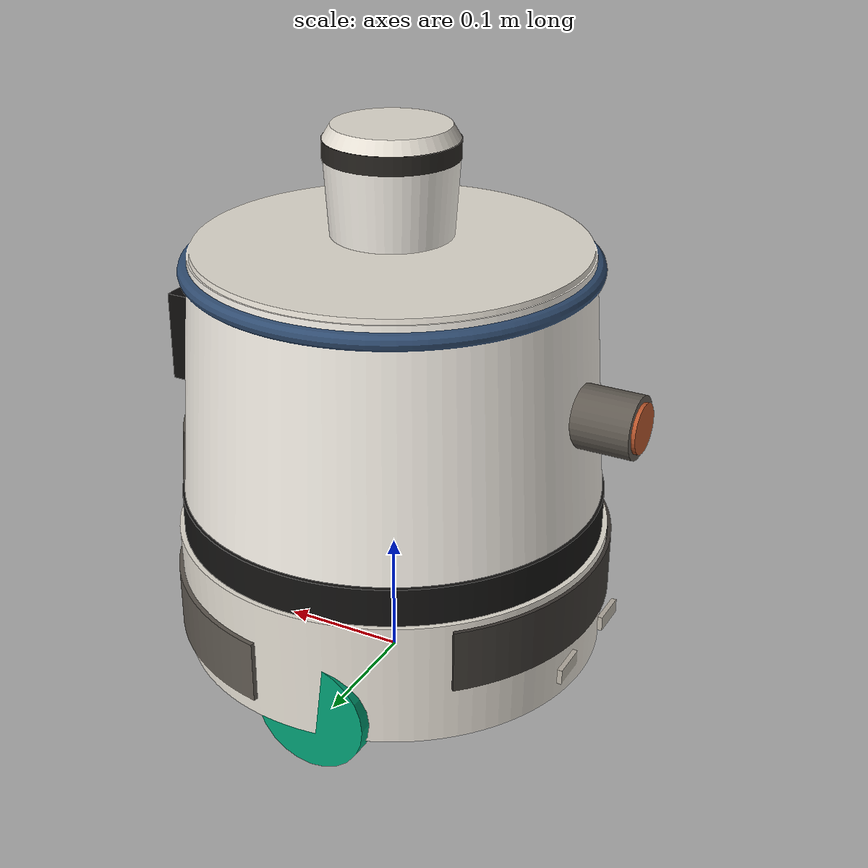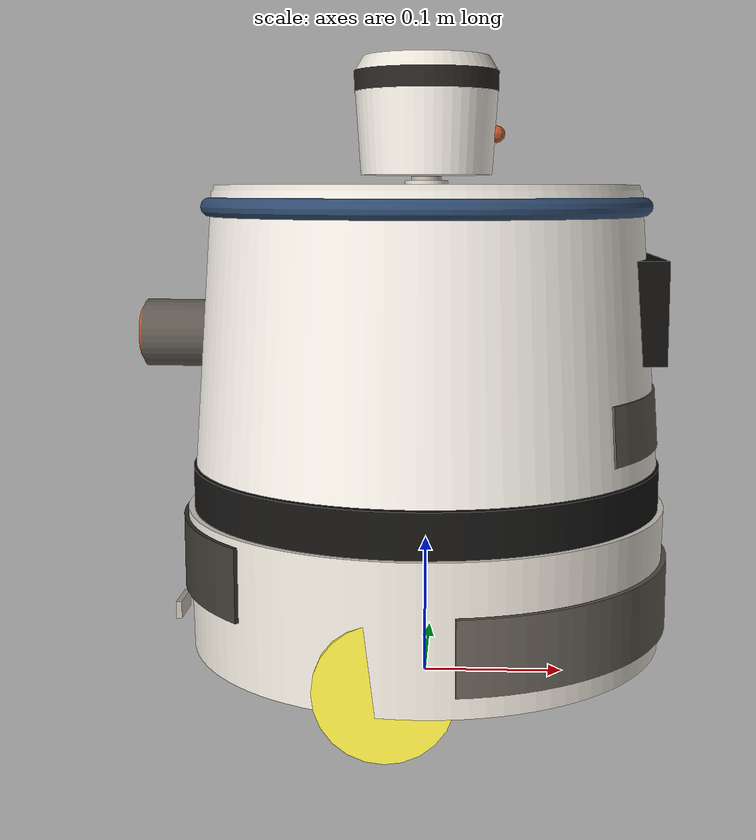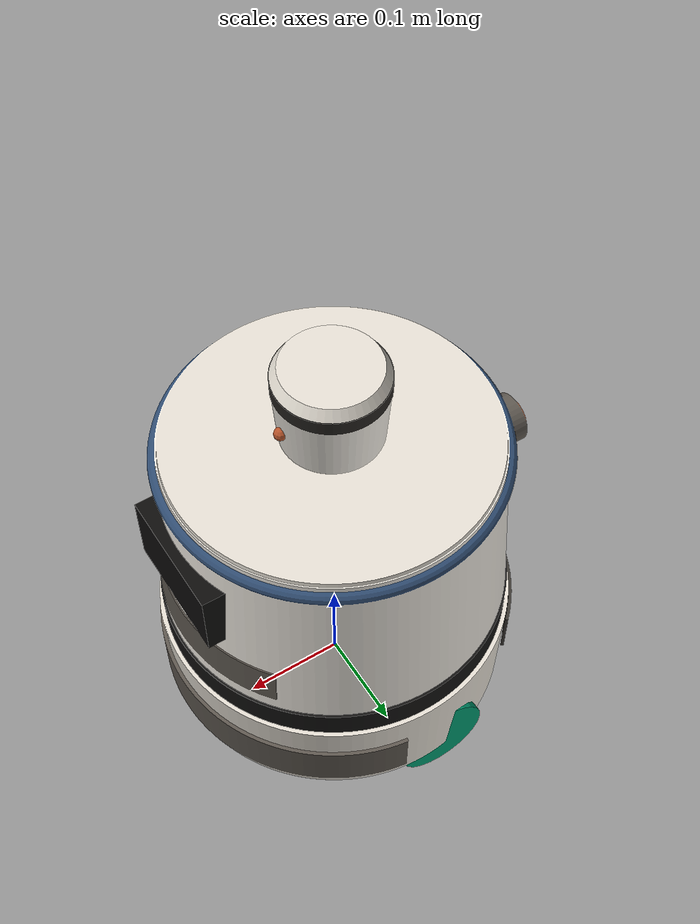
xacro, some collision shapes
<?xml version="1.0"?>
<robot name="oddech" xmlns:xacro="http://www.ros.org/wiki/xacro">
  <xacro:arg name="gazebo" default="true"/>
  <link name="base_footprint"/>
  <link name="base_link">
    <visual name="base_link_visual"><origin xyz="0 0 0" rpy="0 0 0"/><geometry><mesh filename="package://oddech_description/meshes/visual/base.dae"/></geometry></visual>
    <collision name="base_link_collision_0"><origin xyz="0 0 0.191" rpy="0 0 0"/><geometry><cylinder radius="0.173" length="0.322"/></geometry></collision>
    <inertial><origin xyz="-0.015 0 0.12" rpy="0 0 0"/><mass value="4.2"/><inertia ixx="0.06846" ixy="0" ixz="0" iyy="0.06846" iyz="0" izz="0.06069"/></inertial>
  </link>
  <link name="wheel_left_link">
    <visual name="wheel_left_link_visual"><origin xyz="0 0 0" rpy="0 0 0"/><geometry><mesh filename="package://oddech_description/meshes/visual/wheel.dae"/></geometry></visual>
    <collision name="wheel_left_link_collision_0"><origin xyz="0 0 0" rpy="1.5708 0 0"/><geometry><cylinder radius="0.045" length="0.028"/></geometry></collision>
    <inertial><origin xyz="0 0 0" rpy="0 0 0"/><mass value="0.28"/><inertia ixx="0.000160043" ixy="0" ixz="0" iyy="0.0002835" iyz="0" izz="0.000160043"/></inertial>
  </link>
  <link name="wheel_right_link">
    <visual name="wheel_right_link_visual"><origin xyz="0 0 0" rpy="0 0 0"/><geometry><mesh filename="package://oddech_description/meshes/visual/wheel.dae"/></geometry></visual>
    <collision name="wheel_right_link_collision_0"><origin xyz="0 0 0" rpy="1.5708 0 0"/><geometry><cylinder radius="0.045" length="0.028"/></geometry></collision>
    <inertial><origin xyz="0 0 0" rpy="0 0 0"/><mass value="0.28"/><inertia ixx="0.000160043" ixy="0" ixz="0" iyy="0.0002835" iyz="0" izz="0.000160043"/></inertial>
  </link>
  <link name="caster_front_link">
    <visual name="caster_front_link_visual"><origin xyz="0 0 0" rpy="0 0 0"/><geometry><mesh filename="package://oddech_description/meshes/visual/caster.dae"/></geometry></visual>
    <collision name="caster_front_link_collision_0"><origin xyz="0 0 0" rpy="0 0 0"/><geometry><sphere radius="0.018"/></geometry></collision>
    <inertial><origin xyz="0 0 0" rpy="0 0 0"/><mass value="0.02"/><inertia ixx="2.592e-06" ixy="0" ixz="0" iyy="2.592e-06" iyz="0" izz="2.592e-06"/></inertial>
  </link>
  <link name="caster_rear_link">
    <visual name="caster_rear_link_visual"><origin xyz="0 0 0" rpy="0 0 0"/><geometry><mesh filename="package://oddech_description/meshes/visual/caster.dae"/></geometry></visual>
    <collision name="caster_rear_link_collision_0"><origin xyz="0 0 0" rpy="0 0 0"/><geometry><sphere radius="0.018"/></geometry></collision>
    <inertial><origin xyz="0 0 0" rpy="0 0 0"/><mass value="0.02"/><inertia ixx="2.592e-06" ixy="0" ixz="0" iyy="2.592e-06" iyz="0" izz="2.592e-06"/></inertial>
  </link>
  <link name="head_link">
    <visual name="head_link_visual"><origin xyz="0 0 0" rpy="0 0 0"/><geometry><mesh filename="package://oddech_description/meshes/visual/head.dae"/></geometry></visual>
    <collision name="head_link_collision_0"><origin xyz="0 0 0.0025" rpy="0 0 0"/><geometry><cylinder radius="0.05" length="0.081"/></geometry></collision>
    <inertial><origin xyz="0 0 0.0025" rpy="0 0 0"/><mass value="0.3"/><inertia ixx="0.000351525" ixy="0" ixz="0" iyy="0.000351525" iyz="0" izz="0.000375"/></inertial>
  </link>
  <link name="lidar_link"/>
  <link name="imu_link"/>
  <link name="cartridge_link"/>
  <link name="mast_stage_1">
    <visual name="mast_stage_1_visual"><origin xyz="0 0 0" rpy="0 0 0"/><geometry><mesh filename="package://oddech_description/meshes/visual/mast_stage_1.dae"/></geometry></visual>
    <collision name="mast_stage_1_collision_0"><origin xyz="0 0 0.16" rpy="0 0 0"/><geometry><cylinder radius="0.024" length="0.32"/></geometry></collision>
    <inertial><origin xyz="0 0 0.16" rpy="0 0 0"/><mass value="0.130288"/><inertia ixx="0.00114932" ixy="0" ixz="0" iyy="0.00114932" iyz="0" izz="7.5046e-05"/></inertial>
  </link>
  <link name="mast_stage_2">
    <visual name="mast_stage_2_visual"><origin xyz="0 0 0" rpy="0 0 0"/><geometry><mesh filename="package://oddech_description/meshes/visual/mast_stage_2.dae"/></geometry></visual>
    <collision name="mast_stage_2_collision_0"><origin xyz="0 0 0.16" rpy="0 0 0"/><geometry><cylinder radius="0.0195" length="0.32"/></geometry></collision>
    <inertial><origin xyz="0 0 0.16" rpy="0 0 0"/><mass value="0.105859"/><inertia ixx="0.000923458" ixy="0" ixz="0" iyy="0.000923458" iyz="0" izz="4.02529e-05"/></inertial>
  </link>
  <link name="mast_stage_3">
    <visual name="mast_stage_3_visual"><origin xyz="0 0 0" rpy="0 0 0"/><geometry><mesh filename="package://oddech_description/meshes/visual/mast_stage_3.dae"/></geometry></visual>
    <collision name="mast_stage_3_collision_0"><origin xyz="0 0 0.16" rpy="0 0 0"/><geometry><cylinder radius="0.015" length="0.32"/></geometry></collision>
    <inertial><origin xyz="0 0 0.16" rpy="0 0 0"/><mass value="0.0814301"/><inertia ixx="0.000704031" ixy="0" ixz="0" iyy="0.000704031" iyz="0" izz="1.83218e-05"/></inertial>
  </link>
  <link name="mast_stage_4">
    <visual name="mast_stage_4_visual"><origin xyz="0 0 0" rpy="0 0 0"/><geometry><mesh filename="package://oddech_description/meshes/visual/mast_stage_4.dae"/></geometry></visual>
    <collision name="mast_stage_4_collision_0"><origin xyz="0 0 0.16" rpy="0 0 0"/><geometry><cylinder radius="0.0105" length="0.32"/></geometry></collision>
    <inertial><origin xyz="0 0 0.16" rpy="0 0 0"/><mass value="0.0570011"/><inertia ixx="0.000489551" ixy="0" ixz="0" iyy="0.000489551" iyz="0" izz="6.28437e-06"/></inertial>
  </link>
  <joint name="base_joint" type="fixed"><parent link="base_footprint"/><child link="base_link"/><origin xyz="0 0 0" rpy="0 0 0"/></joint>
  <joint name="wheel_left_joint" type="continuous"><parent link="base_link"/><child link="wheel_left_link"/><origin xyz="-0.02 0.152 0.045" rpy="0 0 0"/><axis xyz="0 1 0"/><dynamics damping="0.01" friction="0.0"/></joint>
  <joint name="wheel_right_joint" type="continuous"><parent link="base_link"/><child link="wheel_right_link"/><origin xyz="-0.02 -0.152 0.045" rpy="0 0 0"/><axis xyz="0 1 0"/><dynamics damping="0.01" friction="0.0"/></joint>
  <joint name="caster_front_joint" type="fixed"><parent link="base_link"/><child link="caster_front_link"/><origin xyz="0.12 0 0.018" rpy="0 0 0"/></joint>
  <joint name="caster_rear_joint" type="fixed"><parent link="base_link"/><child link="caster_rear_link"/><origin xyz="-0.13 0 0.0185" rpy="0 0 0"/></joint>
  <joint name="mast_joint_1" type="prismatic"><parent link="base_link"/><child link="mast_stage_1"/><origin xyz="0 0 0.032" rpy="0 0 0"/><axis xyz="0 0 1"/><limit lower="0.0" upper="0.3" effort="60.0" velocity="0.0625"/><dynamics damping="2.0" friction="0.2"/></joint>
  <joint name="mast_joint_2" type="prismatic"><parent link="mast_stage_1"/><child link="mast_stage_2"/><origin xyz="0 0 0.003" rpy="0 0 0"/><axis xyz="0 0 1"/><limit lower="0.0" upper="0.3" effort="60.0" velocity="0.0625"/><dynamics damping="2.0" friction="0.2"/></joint>
  <joint name="mast_joint_3" type="prismatic"><parent link="mast_stage_2"/><child link="mast_stage_3"/><origin xyz="0 0 0.003" rpy="0 0 0"/><axis xyz="0 0 1"/><limit lower="0.0" upper="0.3" effort="60.0" velocity="0.0625"/><dynamics damping="2.0" friction="0.2"/></joint>
  <joint name="mast_joint_4" type="prismatic"><parent link="mast_stage_3"/><child link="mast_stage_4"/><origin xyz="0 0 0.003" rpy="0 0 0"/><axis xyz="0 0 1"/><limit lower="0.0" upper="0.3" effort="60.0" velocity="0.0625"/><dynamics damping="2.0" friction="0.2"/></joint>
  <joint name="head_joint" type="fixed"><parent link="mast_stage_4"/><child link="head_link"/><origin xyz="0 0 0.359" rpy="0 0 0"/></joint>
  <joint name="lidar_joint" type="fixed"><parent link="base_link"/><child link="lidar_link"/><origin xyz="0 0 0.145" rpy="0 0 0"/></joint>
  <joint name="imu_joint" type="fixed"><parent link="base_link"/><child link="imu_link"/><origin xyz="0 0 0.1" rpy="0 0 0"/></joint>
  <joint name="cartridge_joint" type="fixed"><parent link="base_link"/><child link="cartridge_link"/><origin xyz="0.07 0 0.29" rpy="0 0 0"/></joint>
  <xacro:if value="$(arg gazebo)"><xacro:include filename="$(find oddech_description)/urdf/oddech.gazebo.xacro"/></xacro:if>
</robot>
